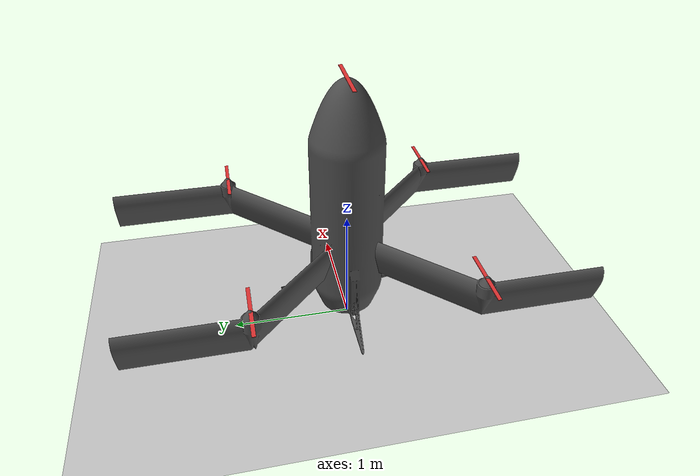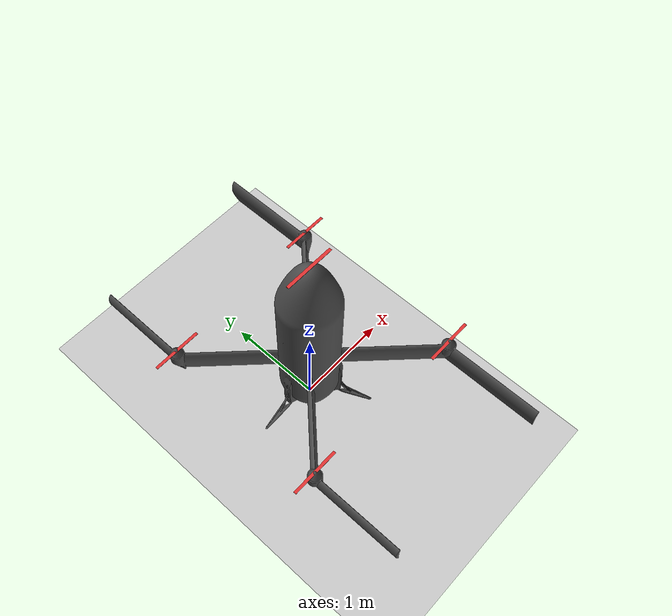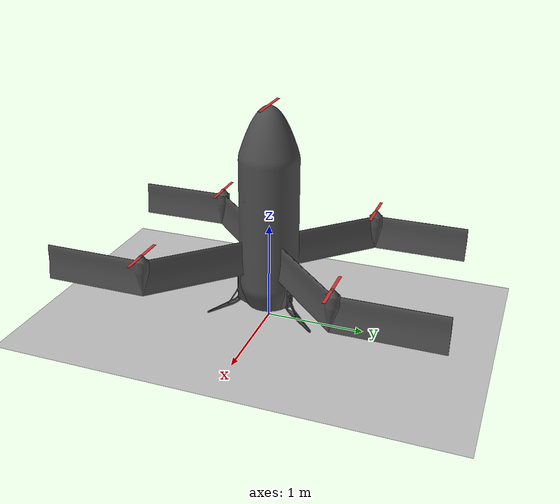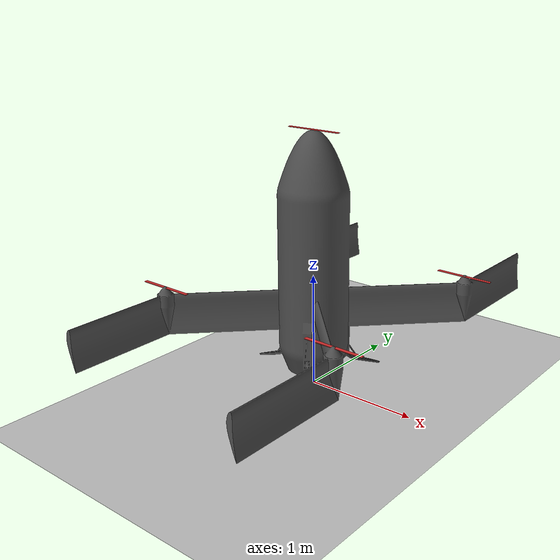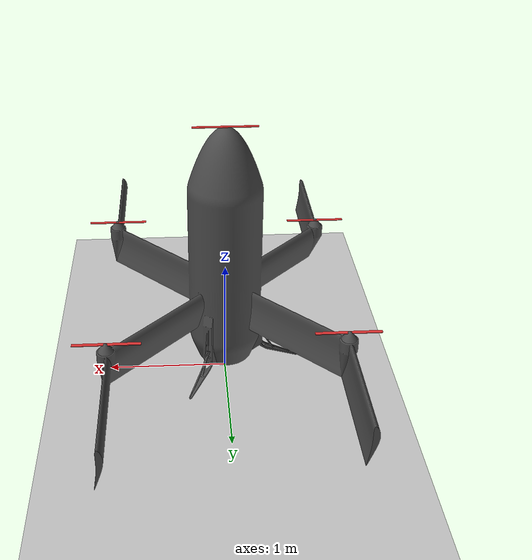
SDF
<?xml version="1.0"?>
<sdf version="1.10">
  <world name="empty">

    <plugin filename="gz-sim-physics-system" name="gz::sim::systems::Physics"/>
    <plugin filename="gz-sim-scene-broadcaster-system" name="gz::sim::systems::SceneBroadcaster"/>

    <gravity>0 0 -9.81</gravity>
    <atmosphere type="adiabatic"/>

    <wind>
      <linear_velocity>5 0 0</linear_velocity>
    </wind>

    <plugin filename="gz-sim-wind-effects-system" name="gz::sim::systems::WindEffects">
      <horizontal>
        <magnitude>
          <time_for_rise>2.0</time_for_rise>
          <sin>
            <amplitude_percent>0.25</amplitude_percent>
            <period>6.0</period>
          </sin>
          <noise>
            <type>gaussian</type>
            <mean>0.0</mean>
            <stddev>0.5</stddev>
          </noise>
        </magnitude>

        <direction>
          <time_for_rise>3.0</time_for_rise>
          <sin>
            <amplitude>0.2</amplitude>
            <period>10.0</period>
          </sin>
          <noise>
            <type>gaussian</type>
            <mean>0.0</mean>
            <stddev>0.05</stddev>
          </noise>
        </direction>
      </horizontal>

      <vertical>
        <time_for_rise>5.0</time_for_rise>
        <noise>
          <type>gaussian</type>
          <mean>0.0</mean>
          <stddev>0.2</stddev>
        </noise>
      </vertical>

      <force_approximation_scaling_factor>
        <when xge="0">1.0</when>
        <when xlt="0">0.3</when>
      </force_approximation_scaling_factor>
    </plugin>

    <light name="sun" type="directional">
      <pose>0 0 200 0 0 0</pose>
      <direction>-0.35 0.15 -1</direction>

      <diffuse>1 1 1 1</diffuse>
      <specular>0.2 0.2 0.2 1</specular>

      <attenuation>
        <range>2000</range>
        <constant>1</constant>
        <linear>0</linear>
        <quadratic>0</quadratic>
      </attenuation>

      <cast_shadows>true</cast_shadows>
    </light>

    <scene>
      <ambient>0.18 0.18 0.18 1</ambient>

      <background>0.60 0.70 0.85 1</background>

      <shadows>true</shadows>

      <fog>
        <type>linear</type>
        <color>0.60 0.70 0.85 1</color>
        <start>250</start>
        <end>1200</end>
      </fog>

      <sky>
        <time>12</time>
        <clouds>true</clouds>
      </sky>

    </scene>

    <spherical_coordinates>
      <surface_model>EARTH_WGS84</surface_model>
      <latitude_deg>37.7749</latitude_deg>
      <longitude_deg>-122.4194</longitude_deg>
      <elevation>0</elevation>
      <heading_deg>0</heading_deg>
    </spherical_coordinates>

    <!-- terrain -->

    <include>
      <uri>https://fuel.gazebosim.org/1.0/openrobotics/models/Ground Plane</uri>
    </include>

    <!-- Hermes -->
    <include>
      <uri>file:///home/santos/dev_ws/src/salvos_gz/models/hermes/model.sdf</uri>
      <name>hermes</name>
      <pose>0 0 0.3 0 0 0</pose>
    </include>

  </world>
</sdf>

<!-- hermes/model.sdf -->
<sdf version="1.10">
  <model name="hermes" canonical_link="base_link">
    <pose>0 0 0 0 0 0</pose>
    <static>false</static>
    <allow_auto_disable>false</allow_auto_disable>

    <plugin filename="gz-sim-imu-system"
        name="gz::sim::systems::Imu">
    </plugin>

    <plugin
      filename="gz-sim-sensors-system"
      name="gz::sim::systems::Sensors">
      <render_engine>ogre2</render_engine>
    </plugin>

    <plugin filename="gz-sim-navsat-system"
            name="gz::sim::systems::NavSat"/>

    <plugin filename="gz-sim-magnetometer-system"
            name="gz::sim::systems::Magnetometer"/>

    <plugin filename="gz-sim-air-pressure-system"
            name="gz::sim::systems::AirPressure"/>

    <plugin name="gz::sim::systems::PosePublisher" filename="gz-sim-pose-publisher-system">
      <publish_model_pose>true</publish_model_pose>

      <publish_link_pose>false</publish_link_pose>
      <publish_visual_pose>false</publish_visual_pose>
      <publish_collision_pose>false</publish_collision_pose>
      <publish_sensor_pose>false</publish_sensor_pose>

      <use_pose_vector_msg>true</use_pose_vector_msg>

      <update_frequency>100</update_frequency>
    </plugin>

    <link name="base_link"/>

    <link name="frame">
      <inertial>
        <pose>0 0 0.6553 0 -1.571 0</pose>
        <mass>263.700</mass> <!--actual mass:263.700-->
        <inertia>
          <ixx>148.894</ixx><ixy>0.0</ixy><ixz>0.0</ixz>
          <iyy>117.926</iyy><iyz>0.0</iyz>
          <izz>48.623</izz>
        </inertia>
      </inertial>

      <visual name="frame_visual">
        <pose>0 0 1.4427 0 -1.571 0</pose>
        <geometry><mesh><uri>meshes/hermesv3.stl</uri></mesh></geometry>
        <cast_shadows>true</cast_shadows>
        <material>
          <ambient>0 0 0 1</ambient>
          <diffuse>0.3 0.3 0.3 1</diffuse>
        </material>
      </visual>
      <collision name="frame_collision">
        <pose>0 0 1.4427 0 -1.571 0</pose>
        <geometry><mesh><uri>meshes/hermesv3.stl</uri></mesh></geometry>
      </collision>

      <sensor name="imu_sensor" type="imu">
        <pose>0 0 0.8875 0 0 0</pose>
        <update_rate>200</update_rate>
        <always_on>true</always_on>
        <visualize>false</visualize>
        <topic>/hermes/imu</topic>

        <imu>
          <angular_velocity>
            <x><noise type="gaussian"><mean>0</mean><stddev>0.0005</stddev></noise></x>
            <y><noise type="gaussian"><mean>0</mean><stddev>0.0005</stddev></noise></y>
            <z><noise type="gaussian"><mean>0</mean><stddev>0.0005</stddev></noise></z>
          </angular_velocity>
          <linear_acceleration>
            <x><noise type="gaussian"><mean>0</mean><stddev>0.03</stddev></noise></x>
            <y><noise type="gaussian"><mean>0</mean><stddev>0.03</stddev></noise></y>
            <z><noise type="gaussian"><mean>0</mean><stddev>0.03</stddev></noise></z>
          </linear_acceleration>
        </imu>
      </sensor>

      <sensor name="gpu_lidar" type="gpu_lidar">
        <pose relative_to="base_link">0 0 0.5 0 1.5708 0</pose>

        <topic>/lidar</topic>
        <update_rate>10</update_rate>

        <ray>
          <scan>
            <horizontal>
              <samples>181</samples>
              <resolution>1</resolution>
              <min_angle>-1.396263</min_angle>
              <max_angle>1.396263</max_angle>
            </horizontal>

            <vertical>
              <samples>1</samples>
              <resolution>1</resolution>
              <min_angle>0</min_angle>
              <max_angle>0</max_angle>
            </vertical>
          </scan>

          <range>
            <min>0.05</min>
            <max>200.0</max>
            <resolution>0.01</resolution>
          </range>
        </ray>

        <always_on>1</always_on>
        <visualize>true</visualize>
      </sensor>

      <!-- MAGNETOMETER -->
      <sensor name="mag" type="magnetometer">
        <pose>0 0 0.9 0 0 0</pose>
        <update_rate>100</update_rate>
        <always_on>true</always_on>
        <visualize>false</visualize>
        <topic>/hermes/mag</topic>
        <magnetometer>
          <x><noise type="gaussian"><mean>0</mean><stddev>1e-7</stddev></noise></x>
          <y><noise type="gaussian"><mean>0</mean><stddev>1e-7</stddev></noise></y>
          <z><noise type="gaussian"><mean>0</mean><stddev>1e-7</stddev></noise></z>
        </magnetometer>
      </sensor>

      <!-- BAROMETER -->
      <sensor name="baro" type="air_pressure">
        <pose>0 0 0.9 0 0 0</pose>
        <update_rate>50</update_rate>
        <always_on>true</always_on>
        <visualize>false</visualize>
        <topic>/hermes/air_pressure</topic>
        <air_pressure>
          <reference_altitude>0</reference_altitude>
          <noise type="gaussian">
            <mean>0</mean>
            <stddev>1.0</stddev> <!-- ~1 Pa RMS -->
          </noise>
        </air_pressure>
      </sensor>

      <sensor name="gps" type="navsat">
        <pose>0 0 0.9 0 0 0</pose>
        <update_rate>10</update_rate>
        <always_on>true</always_on>
        <visualize>false</visualize>
        <topic>/hermes/gps</topic>

        <navsat>
          <!-- Position noise (meters) -->
          <position_sensing>
            <horizontal>
              <noise type="gaussian">
                <mean>0</mean>
                <stddev>1.5</stddev> <!-- ~HDOP 1.5 m -->
              </noise>
            </horizontal>
            <vertical>
              <noise type="gaussian">
                <mean>0</mean>
                <stddev>3.0</stddev>
              </noise>
            </vertical>
          </position_sensing>

          <!-- Velocity noise (m/s) -->
          <velocity_sensing>
            <horizontal>
              <noise type="gaussian">
                <mean>0</mean>
                <stddev>0.1</stddev>
              </noise>
            </horizontal>
            <vertical>
              <noise type="gaussian">
                <mean>0</mean>
                <stddev>0.2</stddev>
              </noise>
            </vertical>
          </velocity_sensing>
        </navsat>
      </sensor>

    </link>

    <link name="nose_rotor">
      <pose>0 0 1.945 0 0 0</pose>
      <inertial>
        <mass>0.5</mass>
        <inertia>
          <ixx>0.00750</ixx>
          <ixy>0.0</ixy>
          <ixz>0.0</ixz>
          <iyy>0.00750</iyy>
          <iyz>0.0</iyz>
          <izz>0.01290</izz>
        </inertia>
      </inertial>
      <visual name="rotor_marker">
        <pose>0 0 0 0 0 0</pose>
        <geometry>
          <box><size>0.508 0.03 0.005</size></box>
        </geometry>
        <material>
          <ambient>0.9 0.2 0.2 1</ambient>
          <diffuse>0.9 0.2 0.2 1</diffuse>
          <specular>0 0 0 1</specular>
        </material>
      </visual>
      <collision name="nose_rotor_collision">
        <geometry><cylinder><radius>0.05</radius><length>0.4</length></cylinder></geometry>
      </collision>
    </link>

    <link name="fl_rotor">
      <pose>-0.875 -0.875 0.645 0 0 0</pose> <!--used 0.875 at xy-->
      <inertial>
        <mass>0.5</mass>
        <inertia>
          <ixx>0.00750</ixx>
          <ixy>0.0</ixy>
          <ixz>0.0</ixz>
          <iyy>0.00750</iyy>
          <iyz>0.0</iyz>
          <izz>0.01290</izz>
        </inertia>
      </inertial>
      <visual name="rotor_marker">
        <pose>0 0 0 0 0 0</pose>
        <geometry>
          <box><size>0.508 0.03 0.005</size></box>
        </geometry>
        <material>
          <ambient>0.9 0.2 0.2 1</ambient>
          <diffuse>0.9 0.2 0.2 1</diffuse>
          <specular>0 0 0 1</specular>
        </material>
      </visual>
      <collision name="fl_rotor_collision">
        <geometry><cylinder><radius>0.05</radius><length>0.4</length></cylinder></geometry>
      </collision>
    </link>

    <link name="fr_rotor">
      <pose>-0.875 0.875 0.645 0 0 0</pose> <!--used 0.875 at xy-->
      <inertial>
        <mass>0.5</mass>
        <inertia>
          <ixx>0.00750</ixx>
          <ixy>0.0</ixy>
          <ixz>0.0</ixz>
          <iyy>0.00750</iyy>
          <iyz>0.0</iyz>
          <izz>0.01290</izz>
        </inertia>
      </inertial>
      <visual name="rotor_marker">
        <pose>0 0 0 0 0 0</pose>
        <geometry>
          <box><size>0.508 0.03 0.005</size></box>
        </geometry>
        <material>
          <ambient>0.9 0.2 0.2 1</ambient>
          <diffuse>0.9 0.2 0.2 1</diffuse>
          <specular>0 0 0 1</specular>
        </material>
      </visual>
      <collision name="fr_rotor_collision">
        <geometry><cylinder><radius>0.05</radius><length>0.4</length></cylinder></geometry>
      </collision>
    </link>

    <link name="rl_rotor">
      <pose>0.925 -0.925 0.645 0 0 0</pose> <!--used 0.925 at xy-->
      <inertial>
        <mass>0.5</mass>
        <inertia>
          <ixx>0.00750</ixx>
          <ixy>0.0</ixy>
          <ixz>0.0</ixz>
          <iyy>0.00750</iyy>
          <iyz>0.0</iyz>
          <izz>0.01290</izz>
        </inertia>
      </inertial>
      <visual name="rotor_marker">
        <pose>0 0 0 0 0 0</pose>
        <geometry>
          <box><size>0.508 0.03 0.005</size></box>
        </geometry>
        <material>
          <ambient>0.9 0.2 0.2 1</ambient>
          <diffuse>0.9 0.2 0.2 1</diffuse>
          <specular>0 0 0 1</specular>
        </material>
      </visual>
      <collision name="rl_rotor_collision">
        <geometry><cylinder><radius>0.05</radius><length>0.4</length></cylinder></geometry>
      </collision>
    </link>

    <link name="rr_rotor">
      <pose>0.925 0.925 0.645 0 0 0</pose> <!--used 0.925 at xy-->
      <inertial>
        <mass>0.5</mass>
        <inertia>
          <ixx>0.00750</ixx>
          <ixy>0.0</ixy>
          <ixz>0.0</ixz>
          <iyy>0.00750</iyy>
          <iyz>0.0</iyz>
          <izz>0.01290</izz>
        </inertia>
      </inertial>
      <visual name="rotor_marker">
        <pose>0 0 0 0 0 0</pose>
        <geometry>
          <box><size>0.508 0.03 0.005</size></box>
        </geometry>
        <material>
          <ambient>0.9 0.2 0.2 1</ambient>
          <diffuse>0.9 0.2 0.2 1</diffuse>
          <specular>0 0 0 1</specular>
        </material>
      </visual>
      <collision name="rr_rotor_collision">
        <geometry><cylinder><radius>0.05</radius><length>0.4</length></cylinder></geometry>
      </collision>
    </link>

    <joint name="dummy_joint" type="fixed">
      <parent>base_link</parent>
      <child>frame</child>
    </joint>

    <joint name='nose_rotor_joint' type='revolute'>
      <child>nose_rotor</child>
      <parent>frame</parent>
      <axis>
        <xyz>0 0 -1</xyz>
      </axis>
    </joint>

    <joint name='fl_rotor_joint' type='revolute'>
      <child>fl_rotor</child>
      <parent>frame</parent>
      <axis>
        <xyz>0 0 -1</xyz>
      </axis>
    </joint>

    <joint name='fr_rotor_joint' type='revolute'>
      <child>fr_rotor</child>
      <parent>frame</parent>
      <axis>
        <xyz>0 0 -1</xyz>
      </axis>
    </joint>

    <joint name='rr_rotor_joint' type='revolute'>
      <child>rr_rotor</child>
      <parent>frame</parent>
      <axis>
        <xyz>0 0 -1</xyz>
      </axis>
    </joint>

    <joint name='rl_rotor_joint' type='revolute'>
      <child>rl_rotor</child>
      <parent>frame</parent>
      <axis>
        <xyz>0 0 -1</xyz>
      </axis>
    </joint>

    <plugin
      filename="gz-sim-multicopter-motor-model-system"
      name="gz::sim::systems::MulticopterMotorModel">
      <robotNamespace>hermes</robotNamespace>
      <jointName>nose_rotor_joint</jointName>
      <linkName>nose_rotor</linkName>
      <turningDirection>cw</turningDirection>

      <maxRotVelocity>380</maxRotVelocity> <!--314.2, old one -->
      <motorConstant>0.0111</motorConstant>
      <momentConstant>0.00170</momentConstant>
      <rotorDragCoefficient>2.0e-4</rotorDragCoefficient>
      <rollingMomentCoefficient>5.0e-6</rollingMomentCoefficient>
      <rotorVelocitySlowdownSim>1</rotorVelocitySlowdownSim>

      <actuator_number>0</actuator_number>
      <motorType>velocity</motorType>
    </plugin>

    <plugin
      filename="gz-sim-multicopter-motor-model-system"
      name="gz::sim::systems::MulticopterMotorModel">
      <robotNamespace>hermes</robotNamespace>
      <jointName>fl_rotor_joint</jointName>
      <linkName>fl_rotor</linkName>
      <turningDirection>ccw</turningDirection>

      <maxRotVelocity>380</maxRotVelocity>
      <motorConstant>0.0111</motorConstant>
      <momentConstant>0.00170</momentConstant>
      <rotorDragCoefficient>2.0e-4</rotorDragCoefficient>
      <rollingMomentCoefficient>5.0e-6</rollingMomentCoefficient>
      <rotorVelocitySlowdownSim>1</rotorVelocitySlowdownSim>

      <actuator_number>1</actuator_number>
      <motorType>velocity</motorType>
    </plugin>

    <plugin
      filename="gz-sim-multicopter-motor-model-system"
      name="gz::sim::systems::MulticopterMotorModel">
      <robotNamespace>hermes</robotNamespace>
      <jointName>fr_rotor_joint</jointName>
      <linkName>fr_rotor</linkName>
      <turningDirection>cw</turningDirection>

      <maxRotVelocity>380</maxRotVelocity>
      <motorConstant>0.0111</motorConstant>
      <momentConstant>0.00170</momentConstant>
      <rotorDragCoefficient>2.0e-4</rotorDragCoefficient>
      <rollingMomentCoefficient>5.0e-6</rollingMomentCoefficient>
      <rotorVelocitySlowdownSim>1</rotorVelocitySlowdownSim>

      <actuator_number>2</actuator_number>
      <motorType>velocity</motorType>
    </plugin>

    <plugin
      filename="gz-sim-multicopter-motor-model-system"
      name="gz::sim::systems::MulticopterMotorModel">
      <robotNamespace>hermes</robotNamespace>
      <jointName>rr_rotor_joint</jointName>
      <linkName>rr_rotor</linkName>
      <turningDirection>ccw</turningDirection>

      <maxRotVelocity>380</maxRotVelocity>
      <motorConstant>0.0111</motorConstant>
      <momentConstant>0.00170</momentConstant>
      <rotorDragCoefficient>2.0e-4</rotorDragCoefficient>
      <rollingMomentCoefficient>5.0e-6</rollingMomentCoefficient>
      <rotorVelocitySlowdownSim>1</rotorVelocitySlowdownSim>

      <actuator_number>3</actuator_number>
      <motorType>velocity</motorType>
    </plugin>

    <plugin
      filename="gz-sim-multicopter-motor-model-system"
      name="gz::sim::systems::MulticopterMotorModel">
      <robotNamespace>hermes</robotNamespace>
      <jointName>rl_rotor_joint</jointName>
      <linkName>rl_rotor</linkName>
      <turningDirection>cw</turningDirection>

      <maxRotVelocity>380</maxRotVelocity>
      <motorConstant>0.0111</motorConstant>
      <momentConstant>0.00170</momentConstant>
      <rotorDragCoefficient>2.0e-4</rotorDragCoefficient>
      <rollingMomentCoefficient>5.0e-6</rollingMomentCoefficient>
      <rotorVelocitySlowdownSim>1</rotorVelocitySlowdownSim>

      <actuator_number>4</actuator_number>
      <motorType>velocity</motorType>
    </plugin>

  </model>
</sdf>
